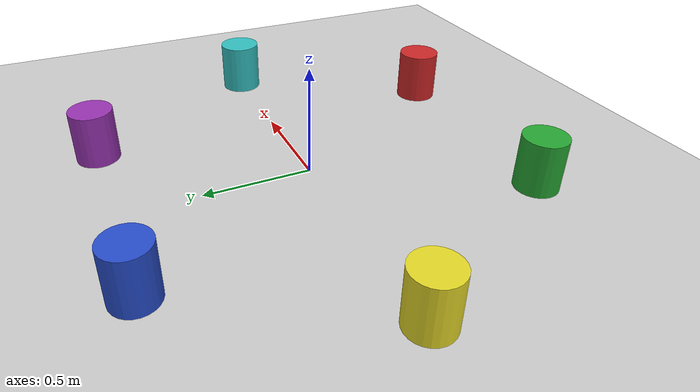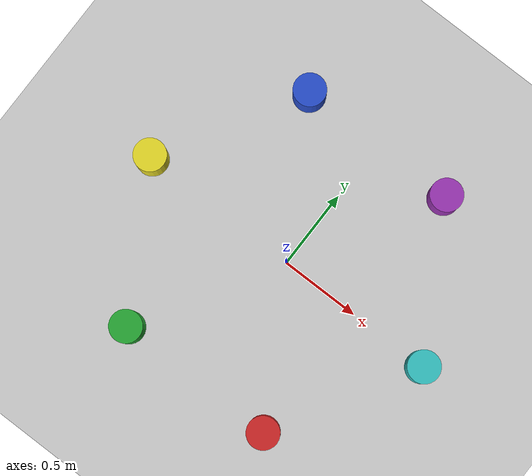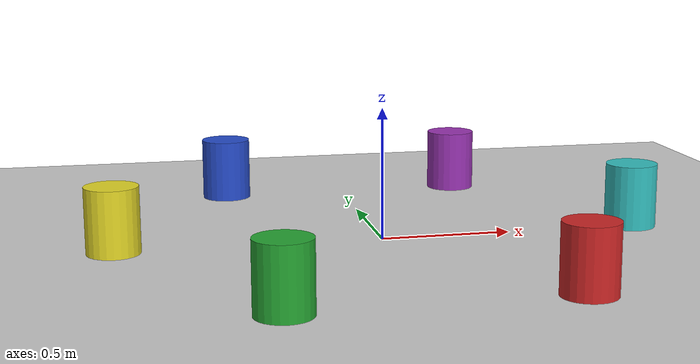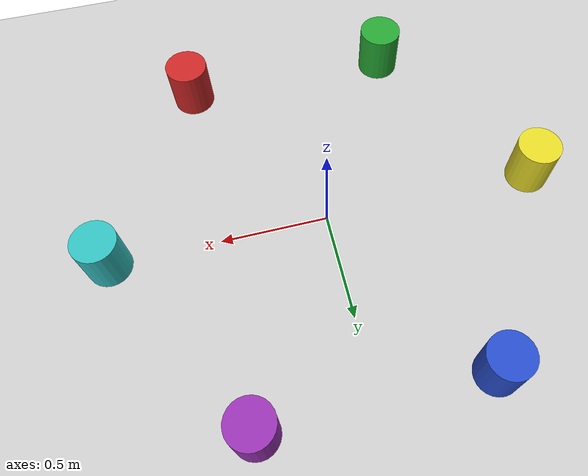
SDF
<?xml version="1.0"?>
<sdf version="1.4">
<model name="beacon_colours">
  <static>true</static>
    <link name="link">
      <collision name="collision">
        <geometry>
          <plane>
            <normal>0 0 1</normal>
            <size>5.0 5.0</size>
          </plane>
        </geometry>
        <surface>
          <friction>
            <ode>
              <mu>100</mu>
              <mu2>50</mu2>
            </ode>
          </friction>
        </surface>
      </collision>
      <visual name="visual">
        <cast_shadows>false</cast_shadows>
        <geometry>
          <plane>
            <normal>0 0 1</normal>
            <size>5.0 5.0</size>
          </plane>
        </geometry>
        <material>
          <script>
            <uri>model://beacon_colours/materials/scripts</uri>
            <uri>model://beacon_colours/materials/textures</uri>
            <name>BeaconColours/Image</name>
          </script>
        </material>
      </visual>
    </link>
    <link name='obstacles'>
      <pose frame=''>0 0 0.125 0 0 0</pose>
      <collision name='bcn_turq'>
        <pose>1 0 0 0 0 0</pose>
        <geometry>
          <cylinder>
            <radius>0.1</radius>
            <length>0.25</length>
          </cylinder>
        </geometry>
        <max_contacts>10</max_contacts>
        <surface>
          <bounce/>
          <friction>
            <ode/>
          </friction>
          <contact>
            <ode/>
          </contact>
        </surface>
      </collision>
      <visual name='bcn_turq'>
        <pose>1 0 0 0 0 0</pose>
        <geometry>
          <cylinder>
            <radius>0.1</radius>
            <length>0.25</length>
          </cylinder>
        </geometry>
        <material>
          <script>
            <uri>file://media/materials/scripts/gazebo.material</uri>
            <name>Gazebo/Turquoise</name>
          </script>
        </material>
      </visual>
      <collision name='bcn_red'>
        <pose>0.5 -0.866 0 0 0 0</pose>
        <geometry>
          <cylinder>
            <radius>0.1</radius>
            <length>0.25</length>
          </cylinder>
        </geometry>
        <max_contacts>10</max_contacts>
        <surface>
          <bounce/>
          <friction>
            <ode/>
          </friction>
          <contact>
            <ode/>
          </contact>
        </surface>
      </collision>
      <visual name='bcn_red'>
        <pose>0.5 -0.866 0 0 0 0</pose>
        <geometry>
          <cylinder>
            <radius>0.1</radius>
            <length>0.25</length>
          </cylinder>
        </geometry>
        <material>
          <script>
            <uri>file://media/materials/scripts/gazebo.material</uri>
            <name>Gazebo/Red</name>
          </script>
        </material>
      </visual>
      <collision name='bcn_green'>
        <pose>-0.5 -0.866 0 0 0 0</pose>
        <geometry>
          <cylinder>
            <radius>0.1</radius>
            <length>0.25</length>
          </cylinder>
        </geometry>
        <max_contacts>10</max_contacts>
        <surface>
          <bounce/>
          <friction>
            <ode/>
          </friction>
          <contact>
            <ode/>
          </contact>
        </surface>
      </collision>
      <visual name='bcn_green'>
        <pose>-0.5 -0.866 0 0 0 0</pose>
        <geometry>
          <cylinder>
            <radius>0.1</radius>
            <length>0.25</length>
          </cylinder>
        </geometry>
        <material>
          <script>
            <uri>file://media/materials/scripts/gazebo.material</uri>
            <name>Gazebo/Green</name>
          </script>
        </material>
      </visual>

      <collision name='bcn_yellow'>
        <pose>-1 0 0 0 0 0</pose>
        <geometry>
          <cylinder>
            <radius>0.1</radius>
            <length>0.25</length>
          </cylinder>
        </geometry>
        <max_contacts>10</max_contacts>
        <surface>
          <bounce/>
          <friction>
            <ode/>
          </friction>
          <contact>
            <ode/>
          </contact>
        </surface>
      </collision>
      <visual name='bcn_yellow'>
        <pose>-1 0 0 0 0 0</pose>
        <geometry>
          <cylinder>
            <radius>0.1</radius>
            <length>0.25</length>
          </cylinder>
        </geometry>
        <material>
          <script>
            <uri>file://media/materials/scripts/gazebo.material</uri>
            <name>Gazebo/Yellow</name>
          </script>
        </material>
      </visual>
      <collision name='bcn_blue'>
        <pose>-0.5 0.866 0 0 0 0</pose>
        <geometry>
          <cylinder>
            <radius>0.1</radius>
            <length>0.25</length>
          </cylinder>
        </geometry>
        <max_contacts>10</max_contacts>
        <surface>
          <bounce/>
          <friction>
            <ode/>
          </friction>
          <contact>
            <ode/>
          </contact>
        </surface>
      </collision>
      <visual name='bcn_blue'>
        <pose>-0.5 0.866 0 0 0 0</pose>
        <geometry>
          <cylinder>
            <radius>0.1</radius>
            <length>0.25</length>
          </cylinder>
        </geometry>
        <material>
          <script>
            <uri>file://media/materials/scripts/gazebo.material</uri>
            <name>Gazebo/Blue</name>
          </script>
        </material>
      </visual>
      <collision name='bcn_purple'>
        <pose>0.5 0.866 0 0 0 0</pose>
        <geometry>
          <cylinder>
            <radius>0.1</radius>
            <length>0.25</length>
          </cylinder>
        </geometry>
        <max_contacts>10</max_contacts>
        <surface>
          <bounce/>
          <friction>
            <ode/>
          </friction>
          <contact>
            <ode/>
          </contact>
        </surface>
      </collision>
      <visual name='bcn_purple'>
        <pose>0.5 0.866 0 0 0 0</pose>
        <geometry>
          <cylinder>
            <radius>0.1</radius>
            <length>0.25</length>
          </cylinder>
        </geometry>
        <material>
          <script>
            <uri>file://media/materials/scripts/gazebo.material</uri>
            <name>Gazebo/Purple</name>
          </script>
        </material>
      </visual>
    </link>
  </model>
</sdf>
